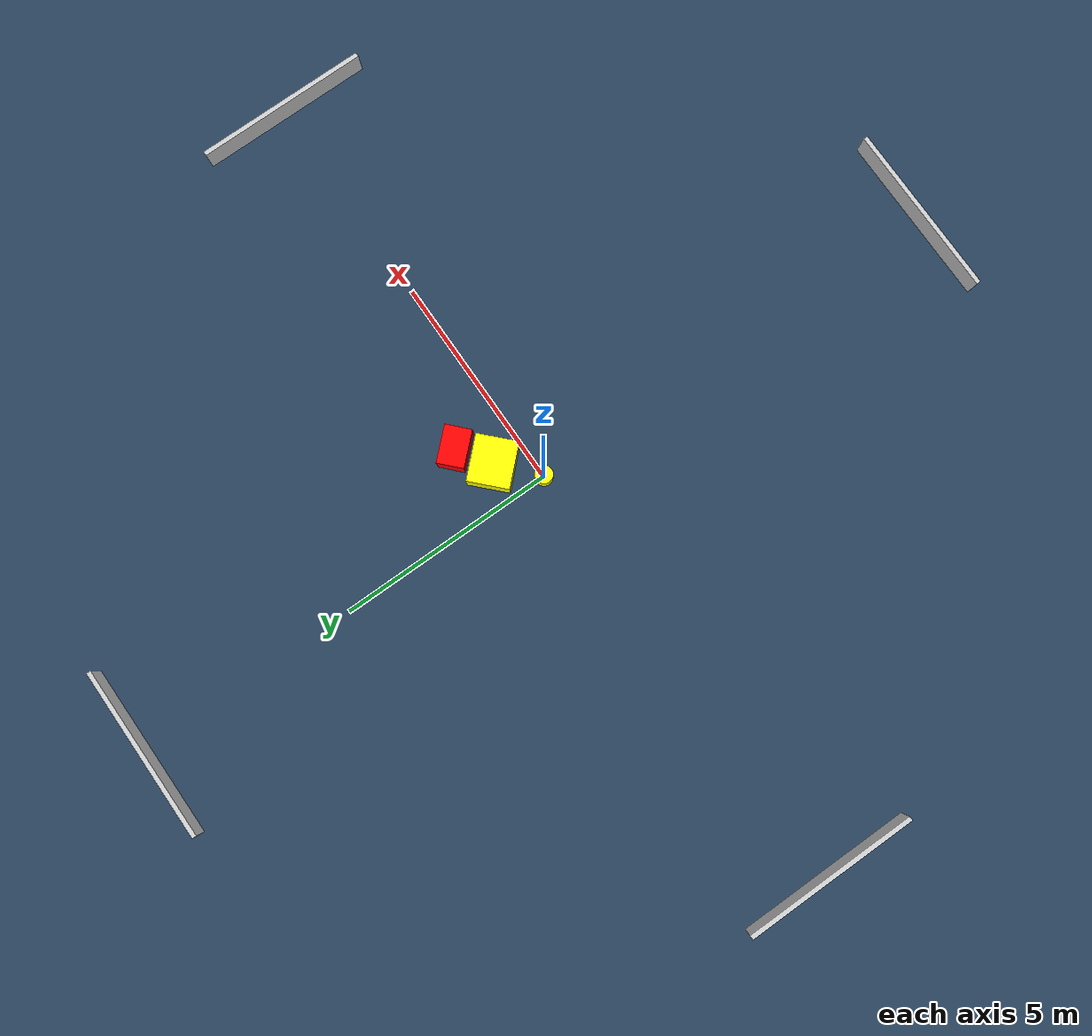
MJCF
<?xml version="1.0" ?>
<mujoco model="generated_environment">
  <option timestep="0.01" integrator="RK4" cone="elliptic"/>
  <default>
    <geom density="1"/>
  </default>
  <asset>
    <texture builtin="gradient" height="3072" name="skybox" rgb1="0.3 0.5 0.7" rgb2="0 0 0" type="skybox" width="512"/>
    <texture builtin="checker" height="300" name="groundplane" rgb1="0.2 0.3 0.4" rgb2="0.1 0.2 0.3" type="2d" width="300"/>
    <material name="groundplane" reflectance="0.2" texrepeat="5 5" texture="groundplane"/>
  </asset>
  <worldbody>
    <light dir="0 0 -1" directional="true" pos="0 0 1.5"/>
    <geom condim="3" friction="0.5 0.005 0.001" material="groundplane" name="floor" pos="0 0 0" size="0 0 0.05" type="plane"/>
    <body name="walls">
      <geom name="wall_1" condim="4" pos="-10.0 0.0 0.3" rgba="0.800000011920929 0.800000011920929 0.800000011920929 1.0" size="0.05 2.0 0.3" type="box"/>
      <geom name="wall_2" condim="4" pos="10.0 0.0 0.3" rgba="0.800000011920929 0.800000011920929 0.800000011920929 1.0" size="0.05 2.0 0.3" type="box"/>
      <geom name="wall_3" condim="4" pos="0.0 -10.0 0.3" rgba="0.800000011920929 0.800000011920929 0.800000011920929 1.0" size="2.0 0.05 0.3" type="box"/>
      <geom name="wall_4" condim="4" pos="0.0 10.0 0.3" rgba="0.800000011920929 0.800000011920929 0.800000011920929 1.0" size="2.0 0.05 0.3" type="box"/>
    </body>
    <body name="robot">
      <joint name="joint_x" type="slide" pos="0 0 0" axis="1 0 0"/>
      <joint name="joint_y" type="slide" pos="0 0 0" axis="0 1 0"/>
      <geom name="robot" type="cylinder" pos="0.0 0.0 0.2" size="0.2 0.2 0.0" mass="5.0" friction="1.0 0.005 0.0001" condim="4" rgba="1.0 1.0 0.0 1.0"/>
    </body>
    <body name="obstacle_1_movable">
      <geom name="obstacle_1_movable" condim="4" pos="0.8264395326810976 0.7348908998174007 0.3" euler="0 0 313.9683567724862" friction="0.0 0.005 0.001" rgba="1.0 1.0 0.0 1.0" size="0.5221426223849674 0.46824348936906346 0.3" type="box" mass="0.1"/>
      <joint type="free"/>
    </body>
    <body name="obstacle_2_static">
      <geom name="obstacle_2_static" condim="4" pos="1.553457835122848 1.213925422243904 0.3" euler="0 0 43.163970553723104" friction="0.0 0.005 0.001" rgba="1.0 0.0 0.0 1.0" size="0.30074739426877267 0.4258827260770389 0.3" type="box"/>
    </body>
  </worldbody>
  <actuator>
    <motor name="actuator_x" joint="joint_x" gear="1" ctrlrange="-1 1"/>
    <motor name="actuator_y" joint="joint_y" gear="1" ctrlrange="-1 1"/>
  </actuator>
</mujoco>
